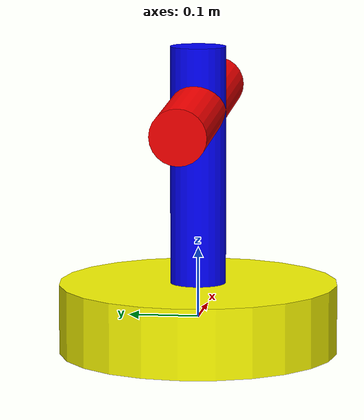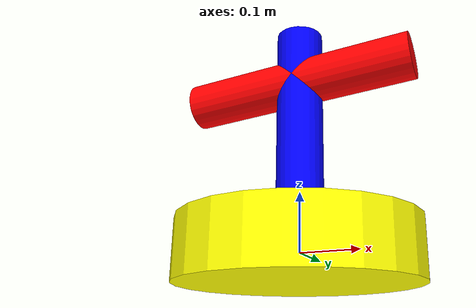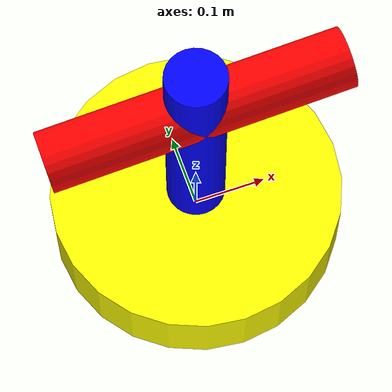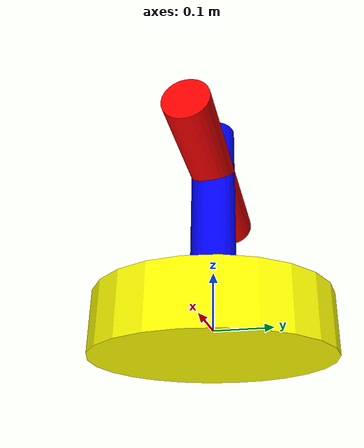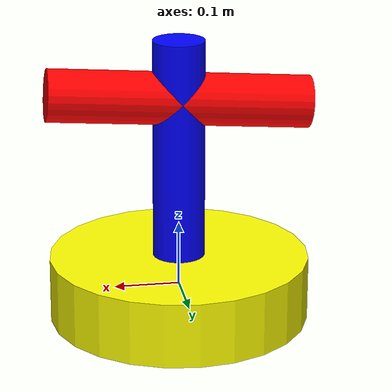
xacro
<?xml version="1.0"?>
<robot xmlns:xacro="http://www.ros.org/wiki/xacro" name="pan_tilt">
<xacro:property name="base_link_length" value="0.1"/>
<xacro:property name="base_link_radius" value="0.2" />
<xacro:property name="pan_link_length" value="0.4"/>
<xacro:property name="pan_link_radius" value="0.04" />

<xacro:macro name="inertial_matrix" params="mass">
    <inertial>
        <mass value="${mass}"/>
       <inertia ixx="0.5" ixy="0.0" ixz="0.0" iyy="0.5" iyz="0.0" izz="0.5"/>
    </inertial>
</xacro:macro>

 <link name="base_link">
        <visual>
            <geometry>
              <cylinder radius="${base_link_radius}" length="${base_link_length}"/>
            </geometry>
            <origin rpy="0.0 0.0 0.0" xyz="0.0 0.0 0.0"/>
            <material name="yellow">
                <color rgba="1 1 0 1"/>
            </material>
        </visual>
        <collision>
            <geometry>
                <cylinder radius="0.2" length="0.03"/>
            </geometry>
            <origin xyz="0.0 0.0 0.0" rpy="0.0 0.0 0.0"/>
        </collision>
        <xacro:inertial_matrix mass="1"/>
    </link>
    <joint name="pan_joint" type="revolute">
       <parent link="base_link"/>
       <child link="pan_link"/>
       <origin xyz="0.0 0.0 0.1"/>
       <axis xyz="0.0 0.0 1.0"/>
       <limit effort="300" velocity="0.1" lower="-3.14" upper="3.14"/>
       <dynamics damping="50" friction="1"/>
    </joint>
    <link name="pan_link">
       <visual>
           <geometry>
               <cylinder radius="${pan_link_radius}" length="${pan_link_length}"/>
           </geometry>
           <origin rpy="0.0 0.0 0.0" xyz="0.0 0.0 0.09"/>
           <material name="red">
                <color rgba="0 0 1 1"/>
           </material>
       </visual>
       <xacro:inertial_matrix mass="1"/>
    </link>
    <joint name="tilt_joint" type="revolute">
        <parent link="pan_link"/>
        <child link="tilt_link"/>
        <origin xyz="0.0 0.0 0.2"/>
        <axis xyz="0.0 1.0 0.0"/>
        <limit lower="-3.14" upper="3.14" effort="300" velocity="0.1"/>
        <dynamics damping="50" friction="1"/>
    </joint>
    <link name="tilt_link">
        <visual>
            <geometry>
                <cylinder radius="0.04" length="0.4"/>
            </geometry>
            <origin  rpy="0.0 1.5 0.0" xyz="0.0 0.0 0.0"/>
            <material name="green">
                <color rgba="1 0 0 1"/>
            </material>
        </visual>
        <xacro:inertial_matrix mass="1"/>
    </link>
</robot>
